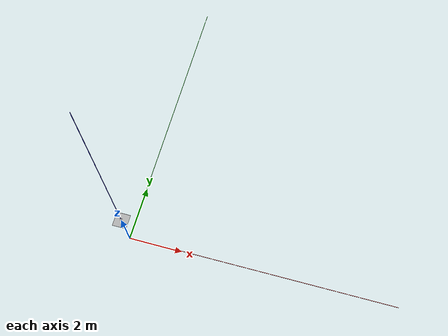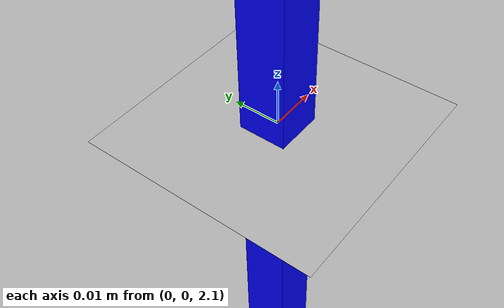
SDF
<sdf version="1.6">
 <world name="waves">
  <plugin filename="gz-sim-physics-system" name="gz::sim::systems::Physics"/>
  <plugin filename="gz-sim-sensors-system" name="gz::sim::systems::Sensors">
   <render_engine>ogre2</render_engine>
   <background_color>0.8 0.8 0.8</background_color>
  </plugin>
  <plugin filename="gz-sim-scene-broadcaster-system" name="gz::sim::systems::SceneBroadcaster"/>
  <plugin filename="gz-sim-user-commands-system" name="gz::sim::systems::UserCommands"/>
  <plugin filename="gz-sim-imu-system" name="gz::sim::systems::Imu"/>
  <plugin filename="gz-sim-navsat-system" name="gz::sim::systems::NavSat"/>
  <scene><ambient>0.8 0.8 0.8 1</ambient><background>0.8 0.8 0.8 1</background></scene>
  <light type="directional" name="sun">
   <pose>0 0 10 0 0 0</pose>
   <diffuse>0.8 0.8 0.8 1</diffuse>
   <specular>0.6 0.6 0.6 1</specular>
   <direction>-0.5 0.1 -0.9</direction>
  </light>
  <spherical_coordinates>
   <latitude_deg>-35.363262</latitude_deg>
   <longitude_deg>149.165237</longitude_deg>
   <elevation>584</elevation>
   <heading_deg>0</heading_deg>
   <surface_model>EARTH_WGS84</surface_model>
  </spherical_coordinates>
  <model name="axes">
   <static>1</static>
   <link name="link">
    <visual name="r">
     <cast_shadows>0</cast_shadows>
     <pose>5 0 0.1 0 0 0</pose>
     <geometry><box><size>10 0.01 0.01</size></box></geometry>
     <material>
      <ambient>1 0 0 1</ambient>
      <diffuse>1 0 0 1</diffuse>
      <emissive>1 0 0 1</emissive>
      <specular>0.5 0.5 0.5 1</specular>
     </material>
    </visual>
    <visual name="g">
     <cast_shadows>0</cast_shadows>
     <pose>0 5 0.1 0 0 0</pose>
     <geometry><box><size>0.01 10 0.01</size></box></geometry>
     <material>
      <ambient>0 1 0 1</ambient>
      <diffuse>0 1 0 1</diffuse>
      <emissive>0 1 0 1</emissive>
      <specular>0.5 0.5 0.5 1</specular>
     </material>
    </visual>
    <visual name="b">
     <cast_shadows>0</cast_shadows>
     <pose>0 0 5.1 0 0 0</pose>
     <geometry><box><size>0.01 0.01 10</size></box></geometry>
     <material>
      <ambient>0 0 1 1</ambient>
      <diffuse>0 0 1 1</diffuse>
      <emissive>0 0 1 1</emissive>
      <specular>0.5 0.5 0.5 1</specular>
     </material>
    </visual>
   </link>
  </model>
  <include><pose>0 0 2 0 0 0</pose><uri>model://Apriltag36_11_00003</uri></include>
  <include><pose>0 0 2.1 0 0 0</pose><uri>model://Apriltag36_11_00011</uri></include>
 </world>
</sdf>

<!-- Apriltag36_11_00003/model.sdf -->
<sdf version='1.6'>
  <model name='Apriltag36_11_00003'>
    <link name='main'>
    <pose frame=''>0 0 0 0 0 0</pose>

      <visual name="visual">
        <geometry>
          <mesh>
            <uri>model://Apriltag36_11_00003/meshes/apriltag_plane.dae</uri>
          </mesh>
        </geometry>
      </visual>

      <collision name="collision">
        <geometry>
          <box>
            <size>1 1 0.01</size>
          </box>
        </geometry>
      </collision>

      <inertial>
        <mass>0.1</mass>
        <inertia>
          <ixx>0.0001</ixx>
          <iyy>0.0001</iyy>
          <izz>0.0001</izz>
          <ixy>0</ixy>
          <ixz>0</ixz>
          <iyz>0</iyz>
        </inertia>
      </inertial>

     </link>
    <static>0</static>
  </model>
</sdf>

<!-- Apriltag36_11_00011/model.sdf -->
<sdf version='1.6'>
  <model name='Apriltag36_11_00011'>
    <link name='main'>
    <pose frame=''>0 0 0 0 0 0</pose>

      <visual name="visual">
        <geometry>
          <mesh>
            <uri>model://Apriltag36_11_00011/meshes/apriltag_plane.dae</uri>
          </mesh>
        </geometry>
      </visual>

      <collision name="collision">
        <geometry>
          <box>
            <size>1 1 0.01</size>
          </box>
        </geometry>
      </collision>

      <inertial>
        <mass>0.1</mass>
        <inertia>
          <ixx>0.0001</ixx>
          <iyy>0.0001</iyy>
          <izz>0.0001</izz>
          <ixy>0</ixy>
          <ixz>0</ixz>
          <iyz>0</iyz>
        </inertia>
      </inertial>

     </link>
    <static>0</static>
  </model>
</sdf>
